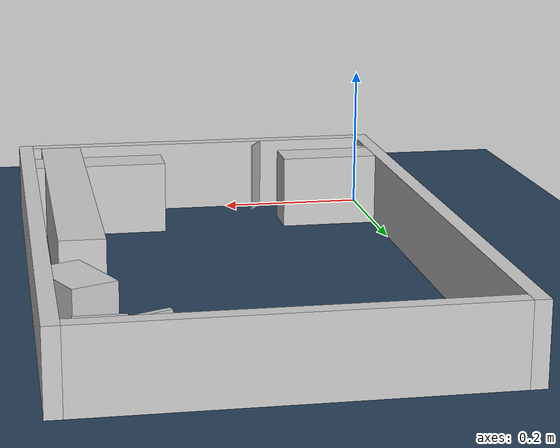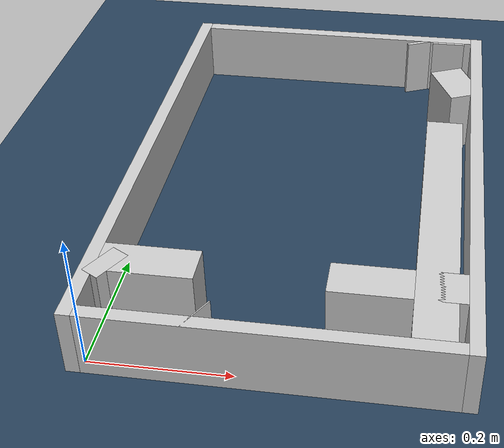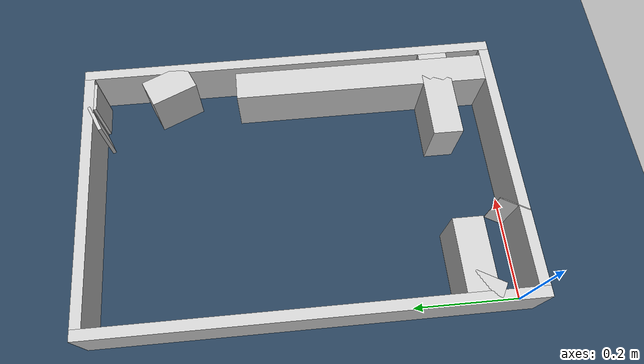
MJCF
<?xml version="1.0" ?>
<mujoco model="generated_real_template">
  <compiler angle="degree"/>
  <option timestep="0.002" integrator="implicitfast" iterations="100" cone="elliptic"/>
  <default>
    <geom density="1"/>
  </default>
  <asset>
    <texture builtin="gradient" height="3072" rgb1="0.3 0.5 0.7" rgb2="0 0 0" type="skybox" width="512"/>
    <texture builtin="checker" height="300" mark="edge" markrgb="0.8 0.8 0.8" name="groundplane" rgb1="0.2 0.3 0.4" rgb2="0.1 0.2 0.3" type="2d" width="300"/>
    <material name="groundplane" reflectance="0.2" texrepeat="5 5" texture="groundplane" texuniform="true"/>
  </asset>
  <worldbody>
    <light dir="0 0 -1" directional="true" pos="0 0 1.5"/>
    <geom name="floor" type="plane" condim="4" friction="0.5 0.005 0.001" material="groundplane" size="0 0 0.05"/>
    <body name="walls">
      <geom name="wall_boundary_left" type="box" condim="4" friction="1.0 0.005 0.0001" rgba="0.8 0.8 0.8 1" pos="-0.010000 0.387500 0.050000" euler="0 0 0.000000" size="0.010000 0.407500 0.050000"/>
      <geom name="wall_boundary_right" type="box" condim="4" friction="1.0 0.005 0.0001" rgba="0.8 0.8 0.8 1" pos="0.500000 0.387500 0.050000" euler="0 0 0.000000" size="0.010000 0.407500 0.050000"/>
      <geom name="wall_boundary_bottom" type="box" condim="4" friction="1.0 0.005 0.0001" rgba="0.8 0.8 0.8 1" pos="0.245000 -0.010000 0.050000" euler="0 0 0.000000" size="0.245000 0.010000 0.050000"/>
      <geom name="wall_boundary_top" type="box" condim="4" friction="1.0 0.005 0.0001" rgba="0.8 0.8 0.8 1" pos="0.245000 0.785000 0.050000" euler="0 0 0.000000" size="0.245000 0.010000 0.050000"/>
      <geom name="wall_inner_1_1" type="box" condim="4" friction="1.0 0.005 0.0001" rgba="0.8 0.8 0.8 1" pos="0.465235 0.628150 0.050000" euler="0 0 113.988288" size="0.046060 0.028500 0.050000"/>
      <geom name="wall_inner_1_2" type="box" condim="4" friction="1.0 0.005 0.0001" rgba="0.8 0.8 0.8 1" pos="0.401257 0.771926 0.050000" euler="0 0 113.988288" size="0.003364 0.028500 0.050000"/>
      <geom name="wall_inner_2_1" type="box" condim="4" friction="1.0 0.005 0.0001" rgba="0.8 0.8 0.8 1" pos="0.067414 0.096447 0.050000" euler="0 0 0.000000" size="0.067414 0.028500 0.050000"/>
      <geom name="wall_inner_2_2" type="box" condim="4" friction="1.0 0.005 0.0001" rgba="0.8 0.8 0.8 1" pos="0.398954 0.096447 0.050000" euler="0 0 0.000000" size="0.091046 0.028500 0.050000"/>
      <geom name="wall_inner_3_1" type="box" condim="4" friction="1.0 0.005 0.0001" rgba="0.8 0.8 0.8 1" pos="0.449283 0.247772 0.050000" euler="0 0 90.000000" size="0.247772 0.028500 0.050000"/>
      <geom name="wall_inner_3_2" type="box" condim="4" friction="1.0 0.005 0.0001" rgba="0.8 0.8 0.8 1" pos="0.449283 0.772093 0.050000" euler="0 0 90.000000" size="0.002907 0.028500 0.050000"/>
      <geom name="wall_inner_4_1" type="box" condim="4" friction="1.0 0.005 0.0001" rgba="0.8 0.8 0.8 1" pos="0.012348 0.084411 0.050000" euler="0 0 -29.564056" size="0.014197 0.028500 0.050000"/>
      <geom name="wall_inner_4_2" type="box" condim="4" friction="1.0 0.005 0.0001" rgba="0.8 0.8 0.8 1" pos="0.151989 0.005199 0.050000" euler="0 0 -29.564056" size="0.000829 0.028500 0.050000"/>
    </body>
  </worldbody>
</mujoco>
